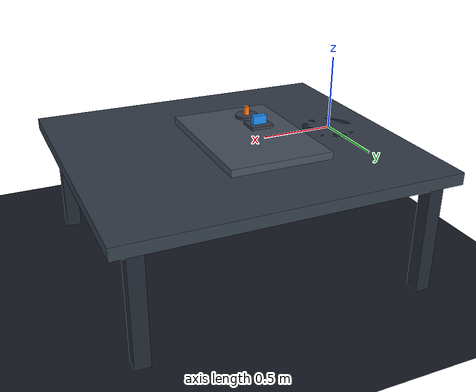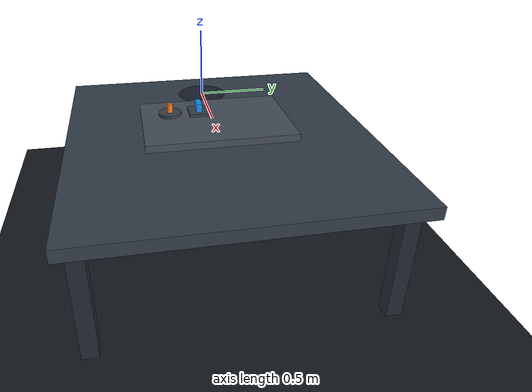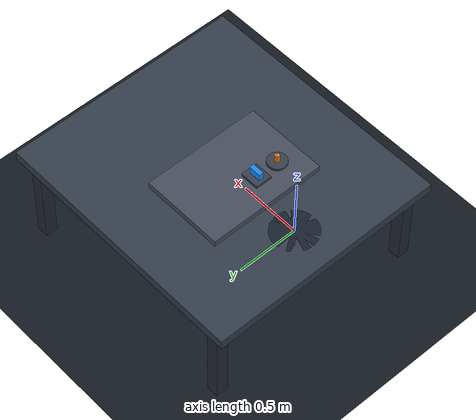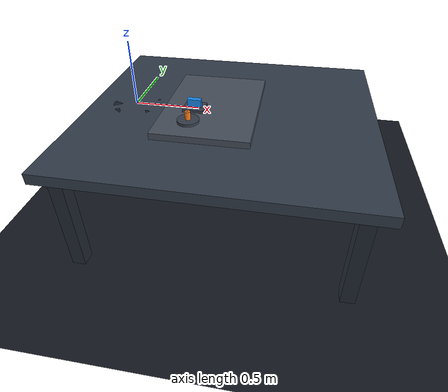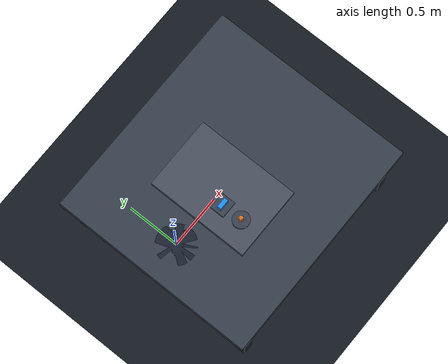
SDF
<?xml version="1.0"?>
<sdf version="1.10">
  <world name="pick_a17">
    <!-- Motion is assessed at the TCP; this cell intentionally has no
         payload dynamics or gravity-induced controller limit. -->
    <gravity>0 0 0</gravity>
    <physics name="fixed_step" type="ignored">
      <max_step_size>0.001</max_step_size>
      <real_time_factor>1.0</real_time_factor>
    </physics>

    <plugin filename="gz-sim-physics-system" name="gz::sim::systems::Physics"/>
    <plugin filename="gz-sim-user-commands-system" name="gz::sim::systems::UserCommands"/>
    <plugin filename="gz-sim-scene-broadcaster-system" name="gz::sim::systems::SceneBroadcaster"/>
    <plugin filename="gz-sim-sensors-system" name="gz::sim::systems::Sensors">
      <render_engine>ogre2</render_engine>
    </plugin>

    <scene>
      <ambient>0.32 0.35 0.40 1</ambient>
      <background>0.025 0.033 0.050 1</background>
      <shadows>true</shadows>
    </scene>

    <light name="key" type="directional">
      <pose>0 0 3 0 0 0</pose>
      <diffuse>0.92 0.95 1.0 1</diffuse>
      <specular>0.20 0.20 0.20 1</specular>
      <direction>-0.4 0.3 -1</direction>
    </light>
    <light name="fill" type="point">
      <pose>0.9 -1.0 1.8 0 0 0</pose>
      <diffuse>0.40 0.48 0.65 1</diffuse>
      <attenuation><range>5</range><linear>0.25</linear><quadratic>0.05</quadratic></attenuation>
    </light>

    <model name="floor">
      <static>true</static>
      <pose>0 0 -0.84 0 0 0</pose>
      <link name="floor_link">
        <collision name="collision"><geometry><plane><normal>0 0 1</normal><size>30 30</size></plane></geometry></collision>
        <visual name="visual"><geometry><plane><normal>0 0 1</normal><size>30 30</size></plane></geometry>
          <material><ambient>0.08 0.10 0.13 1</ambient><diffuse>0.08 0.10 0.13 1</diffuse></material></visual>
      </link>
    </model>

    <model name="worktable">
      <static>true</static>
      <pose>0 0 0 0 0 0</pose>
      <link name="table_link">
        <visual name="top_visual"><pose>0.75 0 -0.04 0 0 0</pose><geometry><box><size>2.20 2.00 0.08</size></box></geometry>
          <material><ambient>0.20 0.24 0.29 1</ambient><diffuse>0.20 0.24 0.29 1</diffuse></material></visual>
        <visual name="leg_front_left"><pose>-0.20 -0.90 -0.44 0 0 0</pose><geometry><box><size>0.10 0.10 0.80</size></box></geometry><material><ambient>0.13 0.16 0.20 1</ambient></material></visual>
        <visual name="leg_front_right"><pose>1.70 -0.90 -0.44 0 0 0</pose><geometry><box><size>0.10 0.10 0.80</size></box></geometry><material><ambient>0.13 0.16 0.20 1</ambient></material></visual>
        <visual name="leg_back_left"><pose>-0.20 0.90 -0.44 0 0 0</pose><geometry><box><size>0.10 0.10 0.80</size></box></geometry><material><ambient>0.13 0.16 0.20 1</ambient></material></visual>
        <visual name="leg_back_right"><pose>1.70 0.90 -0.44 0 0 0</pose><geometry><box><size>0.10 0.10 0.80</size></box></geometry><material><ambient>0.13 0.16 0.20 1</ambient></material></visual>
      </link>
    </model>

    <model name="robot_mount">
      <static>true</static>
      <link name="mount_link">
        <!-- This visible mounting plate makes it clear that the robot base is
             on the tabletop, not on the floor beneath it. -->
        <visual name="base_plate"><pose>0 0 -0.018 0 0 0</pose><geometry><cylinder><radius>0.185</radius><length>0.036</length></cylinder></geometry>
          <material><ambient>0.10 0.13 0.18 1</ambient><diffuse>0.10 0.13 0.18 1</diffuse></material></visual>
      </link>
    </model>

    <model name="part_fixture">
      <static>true</static>
      <!-- The plate begins well in front of the base-mount exclusion zone.
           Its two low nests support a genuine top-down A/B demonstration. -->
      <pose>0.620 0 0 0 0 0</pose>
      <link name="fixture_link">
        <visual name="base_plate"><pose>0 0 0.025 0 0 0</pose><geometry><box><size>0.70 1.00 0.05</size></box></geometry>
          <material><ambient>0.28 0.31 0.36 1</ambient><diffuse>0.28 0.31 0.36 1</diffuse></material></visual>
        <visual name="nest_A"><pose>-0.120 -0.100 0.060 0 0 0</pose><geometry><box><size>0.16 0.14 0.02</size></box></geometry>
          <material><ambient>0.22 0.25 0.30 1</ambient><diffuse>0.22 0.25 0.30 1</diffuse></material></visual>
        <visual name="nest_B"><pose>-0.120 -0.300 0.060 0 0 0</pose><geometry><cylinder><radius>0.080</radius><length>0.02</length></cylinder></geometry>
          <material><ambient>0.22 0.25 0.30 1</ambient><diffuse>0.22 0.25 0.30 1</diffuse></material></visual>
      </link>
    </model>

    <model name="part_A_flat">
      <static>true</static>
      <pose>0.500000 -0.100000 0.100000 0 0 0</pose>
      <link name="part_link">
        <!-- Arrival at the configured TCP is the grasp predicate.  Keep the
             part visual-only so contact does not turn a software offset into
             a Gazebo contact failure. -->
        <visual name="body"><geometry><box><size>0.10 0.04 0.06</size></box></geometry>
          <material><ambient>0.10 0.55 0.94 1</ambient><diffuse>0.10 0.55 0.94 1</diffuse></material></visual>
        <visual name="fiducial"><pose>0 0 0.028 0 0 0</pose><geometry><box><size>0.045 0.025 0.003</size></box></geometry><material><ambient>0.95 0.95 0.95 1</ambient></material></visual>
      </link>
    </model>

    <model name="part_B_tilted">
      <static>true</static>
      <pose>0.500000 -0.300000 0.100000 0 0 0</pose>
      <link name="part_link">
        <visual name="body"><geometry><cylinder><radius>0.020</radius><length>0.06</length></cylinder></geometry>
          <material><ambient>1.0 0.48 0.10 1</ambient><diffuse>1.0 0.48 0.10 1</diffuse></material></visual>
        <visual name="cap"><pose>0 0 0.028 0 0 0</pose><geometry><cylinder><radius>0.014</radius><length>0.004</length></cylinder></geometry><material><ambient>0.96 0.96 0.96 1</ambient></material></visual>
      </link>
    </model>

    <model name="rgbd_camera">
      <static>true</static>
      <pose>1.15 -1.10 1.45 0 0.77 2.20</pose>
      <link name="camera_link">
        <sensor name="rgbd" type="rgbd_camera">
          <always_on>true</always_on><update_rate>12</update_rate><topic>/pick_cell/rgbd</topic>
          <camera><horizontal_fov>1.0471975512</horizontal_fov><image><width>640</width><height>480</height><format>R8G8B8</format></image><clip><near>0.1</near><far>4.0</far></clip></camera>
        </sensor>
      </link>
    </model>

    <model name="observer_camera">
      <static>true</static>
      <pose>1.65 1.35 1.45 0 0.55 -2.34</pose>
      <link name="observer_link">
        <sensor name="observer" type="camera">
          <always_on>true</always_on><update_rate>8</update_rate><topic>/pick_cell/observer</topic>
          <camera><horizontal_fov>1.1344640138</horizontal_fov><image><width>640</width><height>480</height><format>R8G8B8</format></image><clip><near>0.1</near><far>5.0</far></clip></camera>
        </sensor>
      </link>
    </model>
  </world>
</sdf>
